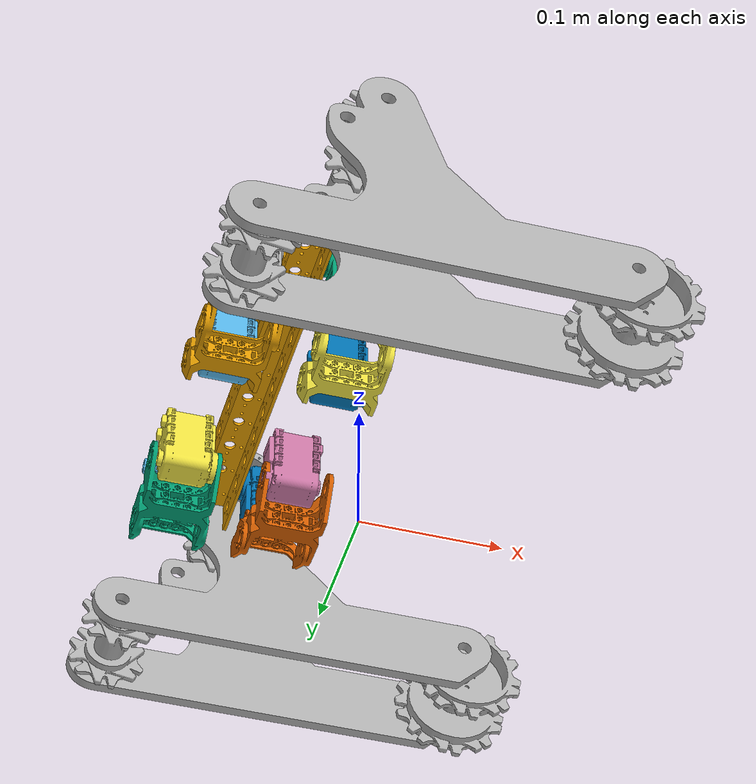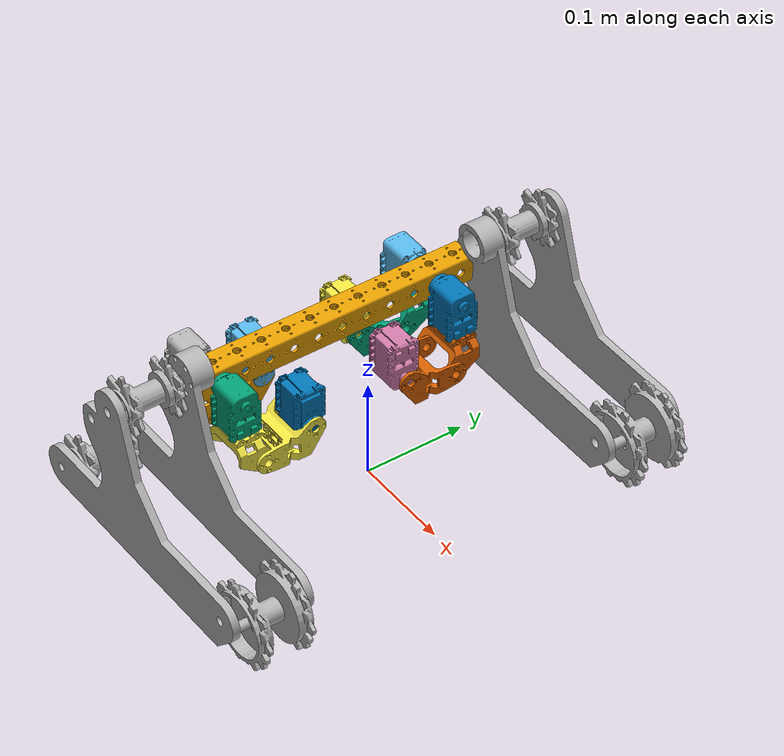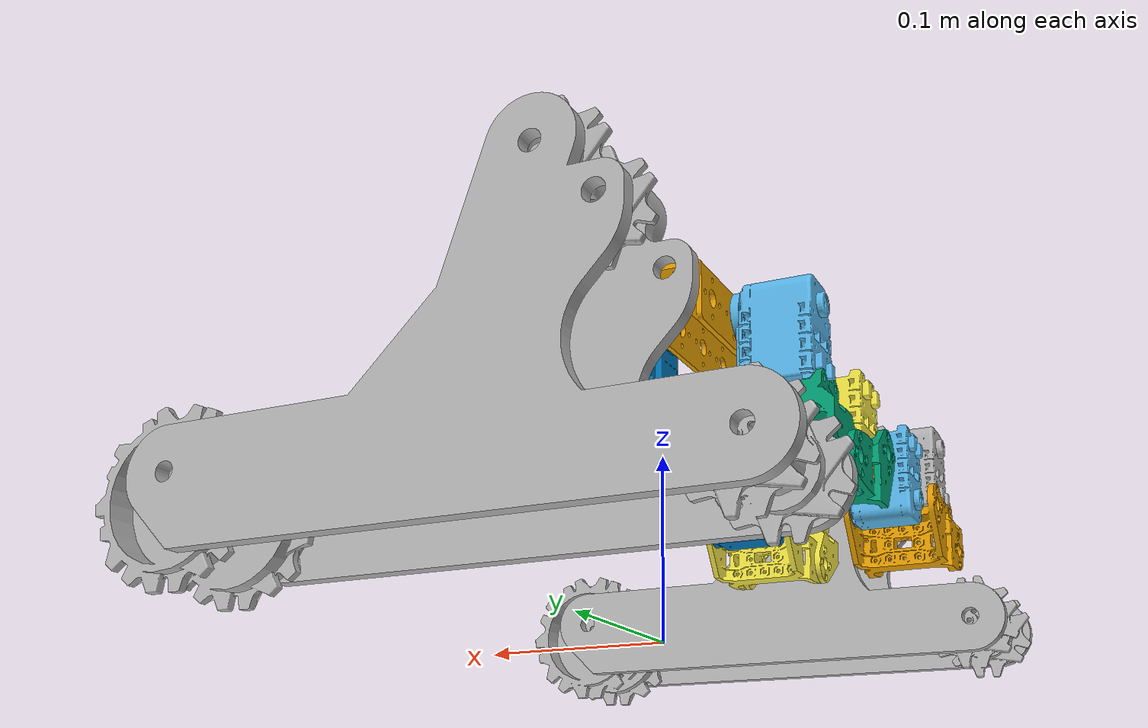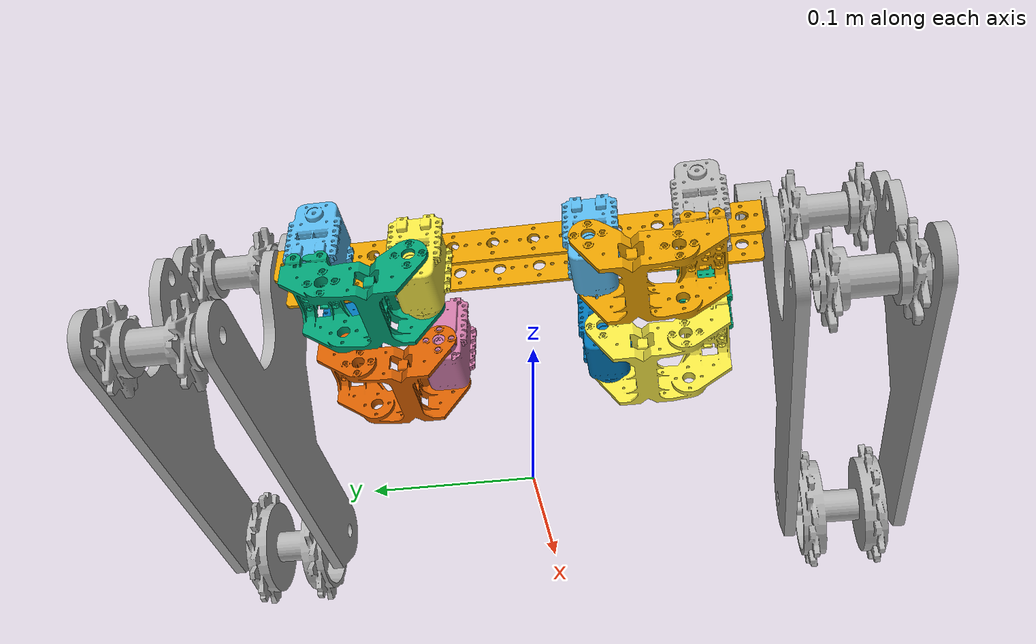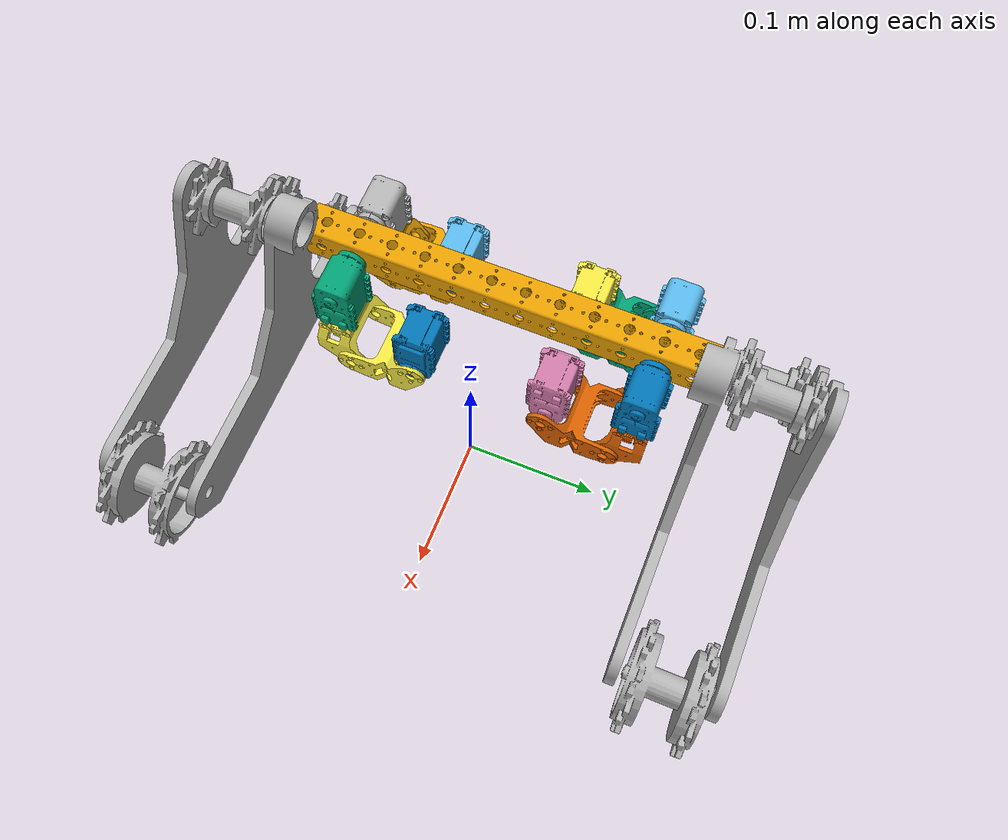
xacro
<?xml version="1.0" ?>
<robot name="aaly">
  <joint name="aaly__knee_left_back_joint" type="revolute">
    <parent link="aaly__base_link"/>
    <child link="aaly__knee_left_back_motor"/>
    <origin rpy="0  0  0" xyz="-0.107    0.1144   0.12127"/>
    <axis xyz="-1  0  0"/>
    <limit effort="100.0" lower="0.0" upper="5.23598775598" velocity="1.0"/>
  </joint>
  <joint name="aaly__leg_left_back_joint" type="fixed">
    <parent link="aaly__knee_left_back_motor"/>
    <child link="aaly__leg_left_back"/>
    <origin rpy="0  0  0" xyz="-0.0035  -0.0159  -0.06587"/>
    <axis xyz="0  0  0"/>
    <limit effort="0" lower="0" upper="0" velocity="0"/>
  </joint>
  <joint name="aaly__thigh_left_back_motor_joint" type="revolute">
    <parent link="aaly__leg_left_back"/>
    <child link="aaly__thigh_left_back_motor"/>
    <origin rpy="3.14159  0       0" xyz="0.0005  -0.0475   0.01586"/>
    <axis xyz="-1  0  0"/>
    <limit effort="100.0" lower="0.0" upper="5.23598775598" velocity="1.0"/>
  </joint>
  <joint name="aaly__knee_left_front_joint" type="revolute">
    <parent link="aaly__base_link"/>
    <child link="aaly__knee_left_front_motor"/>
    <origin rpy="0       0       3.14159" xyz="-0.034    0.1144   0.12127"/>
    <axis xyz="1  0  0"/>
    <limit effort="100.0" lower="0.0" upper="5.23598775598" velocity="1.0"/>
  </joint>
  <joint name="aaly__leg_left_front_joint" type="fixed">
    <parent link="aaly__knee_left_front_motor"/>
    <child link="aaly__leg_left_front"/>
    <origin rpy="0       0      -3.14159" xyz="0       0.0159  -0.04587"/>
    <axis xyz="0  0  0"/>
    <limit effort="0" lower="0" upper="0" velocity="0"/>
  </joint>
  <joint name="aaly__thigh_left_front_motor_joint" type="revolute">
    <parent link="aaly__leg_left_front"/>
    <child link="aaly__thigh_left_front_motor"/>
    <origin rpy="3.14159  0       3.14159" xyz="0.0005  -0.0475  -0.00413"/>
    <axis xyz="1  0  0"/>
    <limit effort="100.0" lower="0.0" upper="5.23598775598" velocity="1.0"/>
  </joint>
  <joint name="aaly__knee_right_back_joint" type="revolute">
    <parent link="aaly__base_link"/>
    <child link="aaly__knee_right_back_motor"/>
    <origin rpy="0  0  0" xyz="-0.107   -0.1144   0.12127"/>
    <axis xyz="1  0  0"/>
    <limit effort="100.0" lower="0.0" upper="5.23598775598" velocity="1.0"/>
  </joint>
  <joint name="aaly__leg_right_back_joint" type="fixed">
    <parent link="aaly__knee_right_back_motor"/>
    <child link="aaly__leg_right_back"/>
    <origin rpy="0  0  0" xyz="-0.00024  0.0159  -0.04587"/>
    <axis xyz="0  0  0"/>
    <limit effort="0" lower="0" upper="0" velocity="0"/>
  </joint>
  <joint name="aaly__thigh_right_back_motor_joint" type="revolute">
    <parent link="aaly__leg_right_back"/>
    <child link="aaly__thigh_right_back_motor"/>
    <origin rpy="3.14159  0       0" xyz="0.0005  0.0475  0"/>
    <axis xyz="-1  0  0"/>
    <limit effort="100.0" lower="0.0" upper="5.23598775598" velocity="1.0"/>
  </joint>
  <joint name="aaly__knee_right_front_joint" type="revolute">
    <parent link="aaly__base_link"/>
    <child link="aaly__knee_right_front_motor"/>
    <origin rpy="0       0       3.14159" xyz="-0.034   -0.1144   0.12127"/>
    <axis xyz="-1  0  0"/>
    <limit effort="100.0" lower="0.0" upper="5.23598775598" velocity="1.0"/>
  </joint>
  <joint name="aaly__leg_right_front_joint" type="fixed">
    <parent link="aaly__knee_right_front_motor"/>
    <child link="aaly__leg_right_front"/>
    <origin rpy="0       0      -3.14159" xyz="-0.00376 -0.0159  -0.06587"/>
    <axis xyz="0  0  0"/>
    <limit effort="0" lower="0" upper="0" velocity="0"/>
  </joint>
  <joint name="aaly__thigh_right_front_motor_joint" type="revolute">
    <parent link="aaly__leg_right_front"/>
    <child link="aaly__thigh_right_front_motor"/>
    <origin rpy="3.14159  0       0" xyz="0.0005   0.0475   0.01586"/>
    <axis xyz="-1  0  0"/>
    <limit effort="100.0" lower="0.0" upper="5.23598775598" velocity="1.0"/>
  </joint>
  <joint name="aaly__Left_Track_Side_joint" type="fixed">
    <parent link="aaly__base_link"/>
    <child link="aaly__Left_Side_Track_Support"/>
    <origin rpy="0  0  0" xyz="-0.01373 -0.15812  0.07062"/>
    <axis xyz="0  0  0"/>
    <limit effort="0" lower="0" upper="0" velocity="0"/>
  </joint>
  <joint name="aaly__Right_Track_Side_joint" type="fixed">
    <parent link="aaly__base_link"/>
    <child link="aaly__Right_Side_Track_Support"/>
    <origin rpy="0  0  0" xyz="-0.01373  0.15812  0.07062"/>
    <axis xyz="0  0  0"/>
    <limit effort="0" lower="0" upper="0" velocity="0"/>
  </joint>
  <joint name="aaly__drum_joint1" type="fixed">
    <parent link="aaly__Left_Side_Track_Support"/>
    <child link="aaly__drum1"/>
    <origin rpy="1.57079  0       0" xyz="-0.1111  -0.038   -0.04062"/>
    <axis xyz="0  0 -1"/>
    <limit effort="0" lower="0" upper="0" velocity="0"/>
  </joint>
  <joint name="aaly__drum_joint2" type="fixed">
    <parent link="aaly__Right_Side_Track_Support"/>
    <child link="aaly__drum2"/>
    <origin rpy="1.57079  0       0" xyz="-0.1111   0.038   -0.04062"/>
    <axis xyz="0  0 -1"/>
    <limit effort="0" lower="0" upper="0" velocity="0"/>
  </joint>
  <joint name="aaly__drum_joint3" type="fixed">
    <parent link="aaly__Left_Side_Track_Support"/>
    <child link="aaly__drum3"/>
    <origin rpy="1.57079  0       0" xyz="0.14257 -0.038   -0.033"/>
    <axis xyz="0  0 -1"/>
    <limit effort="0" lower="0" upper="0" velocity="0"/>
  </joint>
  <joint name="aaly__drum_joint4" type="fixed">
    <parent link="aaly__Right_Side_Track_Support"/>
    <child link="aaly__drum4"/>
    <origin rpy="1.57079  0       0" xyz="0.14257  0.038   -0.033"/>
    <axis xyz="0  0 -1"/>
    <limit effort="0" lower="0" upper="0" velocity="0"/>
  </joint>
  <joint name="aaly__drum_joint5" type="fixed">
    <parent link="aaly__Left_Side_Track_Support"/>
    <child link="aaly__drum5"/>
    <origin rpy="1.57079  0       0" xyz="-0.03231 -0.038    0.08371"/>
    <axis xyz="0  0 -1"/>
    <limit effort="0" lower="0" upper="0" velocity="0"/>
  </joint>
  <joint name="aaly__drum_joint6" type="fixed">
    <parent link="aaly__Right_Side_Track_Support"/>
    <child link="aaly__drum6"/>
    <origin rpy="1.57079  0       0" xyz="-0.03231  0.038    0.08371"/>
    <axis xyz="0  0 -1"/>
    <limit effort="0" lower="0" upper="0" velocity="0"/>
  </joint>
  <joint name="aaly__Left_Side_Track_Cover_joint" type="fixed">
    <parent link="aaly__Left_Side_Track_Support"/>
    <child link="aaly__Left_Side_Track_Cover"/>
    <origin rpy="0  0  0" xyz="0.00029 -0.07299 -0.00899"/>
    <axis xyz="0  0  0"/>
    <limit effort="0" lower="0" upper="0" velocity="0"/>
  </joint>
  <joint name="aaly__Right_Side_Track_Cover_joint" type="fixed">
    <parent link="aaly__Right_Side_Track_Support"/>
    <child link="aaly__Right_Side_Track_Cover"/>
    <origin rpy="0  0  0" xyz="0.00029  0.07299 -0.00899"/>
    <axis xyz="0  0  0"/>
    <limit effort="0" lower="0" upper="0" velocity="0"/>
  </joint>
  <link name="aaly__base_link">
    <inertial>
      <mass value="0.36"/>
      <origin rpy="0  0  0" xyz="0  0  0"/>
      <inertia ixx="0.0028086383999999997" ixy="0.0" ixz="0.0" iyy="4.3094400000000005e-05" iyz="0.0" izz="0.0028086383999999997"/>
    </inertial>
    <collision name="aaly__base_link_collision">
      <origin rpy="0  0  0" xyz="-0.07     0       0.12427"/>
      <geometry>
        <box size="0.026988 0.3000 0.026988"/>
      </geometry>
    </collision>
    <visual name="aaly__base_link_visual">
      <origin rpy="0  0  0" xyz="-0.07     0       0.12427"/>
      <geometry>
        <mesh filename="package://aaly_urdf/meshes/Horizontal_Support_Bar_ASB-512.dae" scale="1.0 1.0 1.0"/>
      </geometry>
    </visual>
  </link>
  <link name="aaly__knee_left_back_motor">
    <inertial>
      <mass value="0.05"/>
      <origin rpy="0  0  0" xyz="0  0  0"/>
      <inertia ixx="1.7083333333333333e-05" ixy="0.0" ixz="0.0" iyy="1.4683333333333334e-05" iyz="0.0" izz="1.0933333333333333e-05"/>
    </inertial>
    <collision name="aaly__knee_left_back_motor_collision">
      <origin rpy="0  0  0" xyz="0  0  0"/>
      <geometry>
        <box size="0.04 0.032 0.050"/>
      </geometry>
    </collision>
    <visual name="aaly__knee_left_back_motor_visual">
      <origin rpy="0  0  0" xyz="0  0  0"/>
      <geometry>
        <mesh filename="package://aaly_urdf/meshes/AX12-A_origin_same_as_center_of_mass.stl" scale="1.0 1.0 1.0"/>
      </geometry>
    </visual>
  </link>
  <link name="aaly__leg_left_back">
    <inertial>
      <mass value="0.05"/>
      <origin rpy="0  0  0" xyz="0  0  0"/>
      <inertia ixx="1.7083333333333333e-05" ixy="0.0" ixz="0.0" iyy="1.4683333333333334e-05" iyz="0.0" izz="1.0933333333333333e-05"/>
    </inertial>
    <collision name="aaly__leg_left_back_collision">
      <origin rpy="0  0  0" xyz="0  0  0"/>
      <geometry>
        <box size="0.04 0.032 0.050"/>
      </geometry>
    </collision>
    <visual name="aaly__leg_left_back_visual">
      <origin rpy="0  0  0" xyz="0  0  0"/>
      <geometry>
        <mesh filename="package://aaly_urdf/meshes/Leg_Left_Back.stl" scale="1.0 1.0 1.0"/>
      </geometry>
    </visual>
  </link>
  <link name="aaly__thigh_left_back_motor">
    <inertial>
      <mass value="0.05"/>
      <origin rpy="0  0  0" xyz="0  0  0"/>
      <inertia ixx="1.7083333333333333e-05" ixy="0.0" ixz="0.0" iyy="1.4683333333333334e-05" iyz="0.0" izz="1.0933333333333333e-05"/>
    </inertial>
    <collision name="aaly__thigh_left_back_motor_collision">
      <origin rpy="0  0  0" xyz="0  0  0"/>
      <geometry>
        <box size="0.04 0.032 0.050"/>
      </geometry>
    </collision>
    <visual name="aaly__thigh_left_back_motor_visual">
      <origin rpy="0  0  0" xyz="0  0  0"/>
      <geometry>
        <mesh filename="package://aaly_urdf/meshes/AX12-A_origin_same_as_center_of_mass.stl" scale="1.0 1.0 1.0"/>
      </geometry>
    </visual>
  </link>
  <link name="aaly__knee_left_front_motor">
    <inertial>
      <mass value="0.05"/>
      <origin rpy="0  0  0" xyz="0  0  0"/>
      <inertia ixx="1.7083333333333333e-05" ixy="0.0" ixz="0.0" iyy="1.4683333333333334e-05" iyz="0.0" izz="1.0933333333333333e-05"/>
    </inertial>
    <collision name="aaly__knee_left_front_motor_collision">
      <origin rpy="0  0  0" xyz="0  0  0"/>
      <geometry>
        <box size="0.04 0.032 0.050"/>
      </geometry>
    </collision>
    <visual name="aaly__knee_left_front_motor_visual">
      <origin rpy="0  0  0" xyz="0  0  0"/>
      <geometry>
        <mesh filename="package://aaly_urdf/meshes/AX12-A_origin_same_as_center_of_mass.stl" scale="1.0 1.0 1.0"/>
      </geometry>
    </visual>
  </link>
  <link name="aaly__leg_left_front">
    <inertial>
      <mass value="0.05"/>
      <origin rpy="0  0  0" xyz="0  0  0"/>
      <inertia ixx="1.7083333333333333e-05" ixy="0.0" ixz="0.0" iyy="1.4683333333333334e-05" iyz="0.0" izz="1.0933333333333333e-05"/>
    </inertial>
    <collision name="aaly__leg_left_front_collision">
      <origin rpy="0  0  0" xyz="0  0  0"/>
      <geometry>
        <box size="0.04 0.032 0.050"/>
      </geometry>
    </collision>
    <visual name="aaly__leg_left_front_visual">
      <origin rpy="0  0  0" xyz="0  0  0"/>
      <geometry>
        <mesh filename="package://aaly_urdf/meshes/Leg_Left_Front.stl" scale="1.0 1.0 1.0"/>
      </geometry>
    </visual>
  </link>
  <link name="aaly__thigh_left_front_motor">
    <inertial>
      <mass value="0.05"/>
      <origin rpy="0  0  0" xyz="0  0  0"/>
      <inertia ixx="1.7083333333333333e-05" ixy="0.0" ixz="0.0" iyy="1.4683333333333334e-05" iyz="0.0" izz="1.0933333333333333e-05"/>
    </inertial>
    <collision name="aaly__thigh_left_front_motor_collision">
      <origin rpy="0  0  0" xyz="0  0  0"/>
      <geometry>
        <box size="0.04 0.032 0.050"/>
      </geometry>
    </collision>
    <visual name="aaly__thigh_left_front_motor_visual">
      <origin rpy="0  0  0" xyz="0  0  0"/>
      <geometry>
        <mesh filename="package://aaly_urdf/meshes/AX12-A_origin_same_as_center_of_mass.stl" scale="1.0 1.0 1.0"/>
      </geometry>
    </visual>
  </link>
  <link name="aaly__knee_right_back_motor">
    <inertial>
      <mass value="0.05"/>
      <origin rpy="0  0  0" xyz="0  0  0"/>
      <inertia ixx="1.7083333333333333e-05" ixy="0.0" ixz="0.0" iyy="1.4683333333333334e-05" iyz="0.0" izz="1.0933333333333333e-05"/>
    </inertial>
    <collision name="aaly__knee_right_back_motor_collision">
      <origin rpy="0  0  0" xyz="0  0  0"/>
      <geometry>
        <box size="0.04 0.032 0.050"/>
      </geometry>
    </collision>
    <visual name="aaly__knee_right_back_motor_visual">
      <origin rpy="0  0  0" xyz="0  0  0"/>
      <geometry>
        <mesh filename="package://aaly_urdf/meshes/AX12-A_origin_same_as_center_of_mass.stl" scale="1.0 1.0 1.0"/>
      </geometry>
    </visual>
  </link>
  <link name="aaly__leg_right_back">
    <inertial>
      <mass value="0.05"/>
      <origin rpy="0  0  0" xyz="0  0  0"/>
      <inertia ixx="1.7083333333333333e-05" ixy="0.0" ixz="0.0" iyy="1.4683333333333334e-05" iyz="0.0" izz="1.0933333333333333e-05"/>
    </inertial>
    <collision name="aaly__leg_right_back_collision">
      <origin rpy="0  0  0" xyz="0  0  0"/>
      <geometry>
        <box size="0.04 0.032 0.050"/>
      </geometry>
    </collision>
    <visual name="aaly__leg_right_back_visual">
      <origin rpy="0  0  0" xyz="0  0  0"/>
      <geometry>
        <mesh filename="package://aaly_urdf/meshes/Leg_Right_Back.stl" scale="1.0 1.0 1.0"/>
      </geometry>
    </visual>
  </link>
  <link name="aaly__thigh_right_back_motor">
    <inertial>
      <mass value="0.05"/>
      <origin rpy="0  0  0" xyz="0  0  0"/>
      <inertia ixx="1.7083333333333333e-05" ixy="0.0" ixz="0.0" iyy="1.4683333333333334e-05" iyz="0.0" izz="1.0933333333333333e-05"/>
    </inertial>
    <collision name="aaly__thigh_right_back_motor_collision">
      <origin rpy="0  0  0" xyz="0  0  0"/>
      <geometry>
        <box size="0.04 0.032 0.050"/>
      </geometry>
    </collision>
    <visual name="aaly__thigh_right_back_motor_visual">
      <origin rpy="0  0  0" xyz="0  0  0"/>
      <geometry>
        <mesh filename="package://aaly_urdf/meshes/AX12-A_origin_same_as_center_of_mass.stl" scale="1.0 1.0 1.0"/>
      </geometry>
    </visual>
  </link>
  <link name="aaly__knee_right_front_motor">
    <inertial>
      <mass value="0.05"/>
      <origin rpy="0  0  0" xyz="0  0  0"/>
      <inertia ixx="1.7083333333333333e-05" ixy="0.0" ixz="0.0" iyy="1.4683333333333334e-05" iyz="0.0" izz="1.0933333333333333e-05"/>
    </inertial>
    <collision name="aaly__knee_right_front_motor_collision">
      <origin rpy="0  0  0" xyz="0  0  0"/>
      <geometry>
        <box size="0.04 0.032 0.050"/>
      </geometry>
    </collision>
    <visual name="aaly__knee_right_front_motor_visual">
      <origin rpy="0  0  0" xyz="0  0  0"/>
      <geometry>
        <mesh filename="package://aaly_urdf/meshes/AX12-A_origin_same_as_center_of_mass.stl" scale="1.0 1.0 1.0"/>
      </geometry>
    </visual>
  </link>
  <link name="aaly__leg_right_front">
    <inertial>
      <mass value="0.05"/>
      <origin rpy="0  0  0" xyz="0  0  0"/>
      <inertia ixx="1.7083333333333333e-05" ixy="0.0" ixz="0.0" iyy="1.4683333333333334e-05" iyz="0.0" izz="1.0933333333333333e-05"/>
    </inertial>
    <collision name="aaly__leg_right_front_collision">
      <origin rpy="0  0  0" xyz="0  0  0"/>
      <geometry>
        <box size="0.04 0.032 0.050"/>
      </geometry>
    </collision>
    <visual name="aaly__leg_right_front_visual">
      <origin rpy="0  0  0" xyz="0  0  0"/>
      <geometry>
        <mesh filename="package://aaly_urdf/meshes/Leg_Right_Front.stl" scale="1.0 1.0 1.0"/>
      </geometry>
    </visual>
  </link>
  <link name="aaly__thigh_right_front_motor">
    <inertial>
      <mass value="0.05"/>
      <origin rpy="0  0  0" xyz="0  0  0"/>
      <inertia ixx="1.7083333333333333e-05" ixy="0.0" ixz="0.0" iyy="1.4683333333333334e-05" iyz="0.0" izz="1.0933333333333333e-05"/>
    </inertial>
    <collision name="aaly__thigh_right_front_motor_collision">
      <origin rpy="0  0  0" xyz="0  0  0"/>
      <geometry>
        <box size="0.04 0.032 0.050"/>
      </geometry>
    </collision>
    <visual name="aaly__thigh_right_front_motor_visual">
      <origin rpy="0  0  0" xyz="0  0  0"/>
      <geometry>
        <mesh filename="package://aaly_urdf/meshes/AX12-A_origin_same_as_center_of_mass.stl" scale="1.0 1.0 1.0"/>
      </geometry>
    </visual>
  </link>
  <link name="aaly__Left_Side_Track_Support">
    <inertial>
      <mass value="0.05"/>
      <origin rpy="0  0  0" xyz="0  0  0"/>
      <inertia ixx="1.7083333333333333e-05" ixy="0.0" ixz="0.0" iyy="1.4683333333333334e-05" iyz="0.0" izz="1.0933333333333333e-05"/>
    </inertial>
    <collision name="aaly__Left_Side_Track_Support_collision">
      <origin rpy="0  0  0" xyz="0     0     0.015"/>
      <geometry>
        <mesh filename="package://aaly_urdf/meshes/Track_Support_Collision_Mesh.dae" scale="1.0 1.0 1.0"/>
      </geometry>
    </collision>
    <visual name="aaly__Left_Side_Track_Support_visual">
      <origin rpy="0  0  0" xyz="0  0  0"/>
      <geometry>
        <mesh filename="package://aaly_urdf/meshes/Track_Support_Left_Side.dae" scale="1.0 1.0 1.0"/>
      </geometry>
    </visual>
  </link>
  <link name="aaly__Right_Side_Track_Support">
    <inertial>
      <mass value="0.05"/>
      <origin rpy="0  0  0" xyz="0  0  0"/>
      <inertia ixx="1.7083333333333333e-05" ixy="0.0" ixz="0.0" iyy="1.4683333333333334e-05" iyz="0.0" izz="1.0933333333333333e-05"/>
    </inertial>
    <collision name="aaly__Right_Side_Track_Support_collision">
      <origin rpy="0  0  0" xyz="0     0     0.015"/>
      <geometry>
        <mesh filename="package://aaly_urdf/meshes/Track_Support_Collision_Mesh.dae" scale="1.0 1.0 1.0"/>
      </geometry>
    </collision>
    <visual name="aaly__Left_Side_Track_Support_visual">
      <origin rpy="0  0  0" xyz="0  0  0"/>
      <geometry>
        <mesh filename="package://aaly_urdf/meshes/Track_Support_Right_Side.dae" scale="1.0 1.0 1.0"/>
      </geometry>
    </visual>
  </link>
  <link name="aaly__drum1">
    <inertial>
      <mass value="0.1"/>
      <origin rpy="0  0  0" xyz="0  0  0"/>
      <inertia ixx="4.0003370625000006e-05" ixy="0.0" ixz="0.0" iyy="4.0003370625000006e-05" iyz="0.0" izz="3.624778125000001e-05"/>
    </inertial>
    <collision name="aaly__drum1_collision">
      <origin rpy="0  0  0" xyz="0  0  0"/>
      <geometry>
        <cylinder length="0.05124" radius="0.026925"/>
      </geometry>
    </collision>
    <visual name="aaly__drum1_visual">
      <origin rpy="0  0  0" xyz="0  0  0"/>
      <geometry>
        <mesh filename="package://aaly_urdf/meshes/Lynx_Sproket6in_Hub13.dae" scale="1.0 1.0 1.0"/>
      </geometry>
    </visual>
  </link>
  <link name="aaly__drum2">
    <inertial>
      <mass value="0.1"/>
      <origin rpy="0  0  0" xyz="0  0  0"/>
      <inertia ixx="4.0003370625000006e-05" ixy="0.0" ixz="0.0" iyy="4.0003370625000006e-05" iyz="0.0" izz="3.624778125000001e-05"/>
    </inertial>
    <collision name="aaly__drum2_collision">
      <origin rpy="0  0  0" xyz="0  0  0"/>
      <geometry>
        <cylinder length="0.05124" radius="0.026925"/>
      </geometry>
    </collision>
    <visual name="aaly__drum2_visual">
      <origin rpy="0  0  0" xyz="0  0  0"/>
      <geometry>
        <mesh filename="package://aaly_urdf/meshes/Lynx_Sproket6in_Hub13.dae" scale="1.0 1.0 1.0"/>
      </geometry>
    </visual>
  </link>
  <link name="aaly__drum3">
    <inertial>
      <mass value="0.15"/>
      <origin rpy="0  0  0" xyz="0  0  0"/>
      <inertia ixx="5.5414245624999996e-05" ixy="0.0" ixz="0.0" iyy="5.5414245624999996e-05" iyz="0.0" izz="0.000100604296875"/>
    </inertial>
    <collision name="aaly__drum3_collision">
      <origin rpy="0  0  0" xyz="0  0  0"/>
      <geometry>
        <cylinder length="0.05124" radius="0.036625"/>
      </geometry>
    </collision>
    <visual name="aaly__drum3_visual">
      <origin rpy="0  0  0" xyz="0  0  0"/>
      <geometry>
        <mesh filename="package://aaly_urdf/meshes/Lynx_Sproket9in_Hub13.dae" scale="1.0 1.0 1.0"/>
      </geometry>
    </visual>
  </link>
  <link name="aaly__drum4">
    <inertial>
      <mass value="0.15"/>
      <origin rpy="0  0  0" xyz="0  0  0"/>
      <inertia ixx="5.5414245624999996e-05" ixy="0.0" ixz="0.0" iyy="5.5414245624999996e-05" iyz="0.0" izz="0.000100604296875"/>
    </inertial>
    <collision name="aaly__drum4_collision">
      <origin rpy="0  0  0" xyz="0  0  0"/>
      <geometry>
        <cylinder length="0.05124" radius="0.036625"/>
      </geometry>
    </collision>
    <visual name="aaly__drum4_visual">
      <origin rpy="0  0  0" xyz="0  0  0"/>
      <geometry>
        <mesh filename="package://aaly_urdf/meshes/Lynx_Sproket9in_Hub13.dae" scale="1.0 1.0 1.0"/>
      </geometry>
    </visual>
  </link>
  <link name="aaly__drum5">
    <inertial>
      <mass value="0.1"/>
      <origin rpy="0  0  0" xyz="0  0  0"/>
      <inertia ixx="4.0003370625000006e-05" ixy="0.0" ixz="0.0" iyy="4.0003370625000006e-05" iyz="0.0" izz="3.624778125000001e-05"/>
    </inertial>
    <collision name="aaly__drum5_collision">
      <origin rpy="0  0  0" xyz="0  0  0"/>
      <geometry>
        <cylinder length="0.05124" radius="0.027025"/>
      </geometry>
    </collision>
    <visual name="aaly__drum5_visual">
      <origin rpy="0  0  0" xyz="0  0  0"/>
      <geometry>
        <mesh filename="package://aaly_urdf/meshes/Lynx_Sproket6in_Hub13.dae" scale="1.0 1.0 1.0"/>
      </geometry>
    </visual>
  </link>
  <link name="aaly__drum6">
    <inertial>
      <mass value="0.1"/>
      <origin rpy="0  0  0" xyz="0  0  0"/>
      <inertia ixx="4.0003370625000006e-05" ixy="0.0" ixz="0.0" iyy="4.0003370625000006e-05" iyz="0.0" izz="3.624778125000001e-05"/>
    </inertial>
    <collision name="aaly__drum6_collision">
      <origin rpy="0  0  0" xyz="0  0  0"/>
      <geometry>
        <cylinder length="0.05124" radius="0.027025"/>
      </geometry>
    </collision>
    <visual name="aaly__drum6_visual">
      <origin rpy="0  0  0" xyz="0  0  0"/>
      <geometry>
        <mesh filename="package://aaly_urdf/meshes/Lynx_Sproket6in_Hub13.dae" scale="1.0 1.0 1.0"/>
      </geometry>
    </visual>
  </link>
  <link name="aaly__Left_Side_Track_Cover">
    <inertial>
      <mass value="0.05"/>
      <origin rpy="0  0  0" xyz="0  0  0"/>
      <inertia ixx="1.7083333333333333e-05" ixy="0.0" ixz="0.0" iyy="1.4683333333333334e-05" iyz="0.0" izz="1.0933333333333333e-05"/>
    </inertial>
    <collision name="aaly__Left_Side_Track_Cover_collision">
      <origin rpy="0  0  0" xyz="0     0     0.015"/>
      <geometry>
        <mesh filename="package://aaly_urdf/meshes/Track_Support_Collision_Mesh.dae" scale="1.0 1.0 1.0"/>
      </geometry>
    </collision>
    <visual name="aaly__Left_Side_Track_Cover_visual">
      <origin rpy="0  0  0" xyz="0  0  0"/>
      <geometry>
        <mesh filename="package://aaly_urdf/meshes/Track_Support_Cover_Side.dae" scale="1.0 1.0 1.0"/>
      </geometry>
    </visual>
  </link>
  <link name="aaly__Right_Side_Track_Cover">
    <inertial>
      <mass value="0.05"/>
      <origin rpy="0  0  0" xyz="0  0  0"/>
      <inertia ixx="1.7083333333333333e-05" ixy="0.0" ixz="0.0" iyy="1.4683333333333334e-05" iyz="0.0" izz="1.0933333333333333e-05"/>
    </inertial>
    <collision name="aaly__Right_Side_Track_Cover_collision">
      <origin rpy="0  0  0" xyz="0     0     0.015"/>
      <geometry>
        <mesh filename="package://aaly_urdf/meshes/Track_Support_Collision_Mesh.dae" scale="1.0 1.0 1.0"/>
      </geometry>
    </collision>
    <visual name="aaly__Right_Side_Track_Cover_visual">
      <origin rpy="0  0  0" xyz="0  0  0"/>
      <geometry>
        <mesh filename="package://aaly_urdf/meshes/Track_Support_Cover_Side.dae" scale="1.0 1.0 1.0"/>
      </geometry>
    </visual>
  </link>

  <transmission name="tran1">
    <type>transmission_interface/SimpleTransmission</type>
    <joint name="aaly__knee_left_back_joint">
      <hardwareInterface>hardware_interface/PositionJointInterface</hardwareInterface>
    </joint>
    <actuator name="aaly__knee_left_back_motor">
      <hardwareInterface>hardware_interface/PositionJointInterface</hardwareInterface>
      <mechanicalReduction>1</mechanicalReduction>
    </actuator>
  </transmission>

  <transmission name="tran2">
    <type>transmission_interface/SimpleTransmission</type>
    <joint name="aaly__knee_left_front_joint">
      <hardwareInterface>hardware_interface/PositionJointInterface</hardwareInterface>
    </joint>
    <actuator name="aaly__knee_left_front_motor">
      <hardwareInterface>hardware_interface/PositionJointInterface</hardwareInterface>
      <mechanicalReduction>1</mechanicalReduction>
    </actuator>
  </transmission>

  <transmission name="tran3">
    <type>transmission_interface/SimpleTransmission</type>
    <joint name="aaly__knee_right_back_joint">
      <hardwareInterface>hardware_interface/PositionJointInterface</hardwareInterface>
    </joint>
    <actuator name="aaly__knee_right_back_motor">
      <hardwareInterface>hardware_interface/PositionJointInterface</hardwareInterface>
      <mechanicalReduction>1</mechanicalReduction>
    </actuator>
  </transmission>

  <transmission name="tran4">
    <type>transmission_interface/SimpleTransmission</type>
    <joint name="aaly__knee_right_front_joint">
      <hardwareInterface>hardware_interface/PositionJointInterface</hardwareInterface>
    </joint>
    <actuator name="aaly__knee_right_front_motor">
      <hardwareInterface>hardware_interface/PositionJointInterface</hardwareInterface>
      <mechanicalReduction>1</mechanicalReduction>
    </actuator>
  </transmission>
  <transmission name="tran5">
    <type>transmission_interface/SimpleTransmission</type>
    <joint name="aaly__thigh_left_back_motor_joint">
      <hardwareInterface>hardware_interface/PositionJointInterface</hardwareInterface>
    </joint>
    <actuator name="aaly__thigh_left_back_motor">
      <hardwareInterface>hardware_interface/PositionJointInterface</hardwareInterface>
      <mechanicalReduction>1</mechanicalReduction>
    </actuator>
  </transmission>

  <transmission name="tran6">
    <type>transmission_interface/SimpleTransmission</type>
    <joint name="aaly__thigh_left_front_motor_joint">
      <hardwareInterface>hardware_interface/PositionJointInterface</hardwareInterface>
    </joint>
    <actuator name="aaly__thigh_left_front_motor">
      <hardwareInterface>hardware_interface/PositionJointInterface</hardwareInterface>
      <mechanicalReduction>1</mechanicalReduction>
    </actuator>
  </transmission>

  <transmission name="tran7">
    <type>transmission_interface/SimpleTransmission</type>
    <joint name="aaly__thigh_right_back_motor_joint">
      <hardwareInterface>hardware_interface/PositionJointInterface</hardwareInterface>
    </joint>
    <actuator name="aaly__thigh_right_back_motor">
      <hardwareInterface>hardware_interface/PositionJointInterface</hardwareInterface>
      <mechanicalReduction>1</mechanicalReduction>
    </actuator>
  </transmission>

  <transmission name="tran8">
    <type>transmission_interface/SimpleTransmission</type>
    <joint name="aaly__thigh_right_front_motor_joint">
      <hardwareInterface>hardware_interface/PositionJointInterface</hardwareInterface>
    </joint>
    <actuator name="aaly__thigh_right_front_motor">
      <hardwareInterface>hardware_interface/PositionJointInterface</hardwareInterface>
      <mechanicalReduction>1</mechanicalReduction>
    </actuator>
  </transmission>

</robot>
